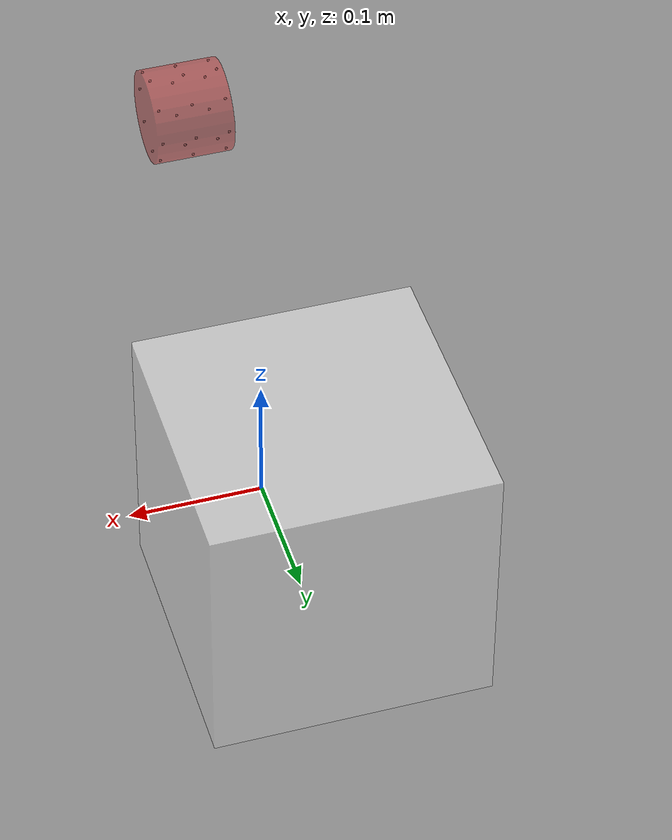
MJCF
<mujoco model="onshape">
    <compiler angle="radian"/>

    <option integrator="implicit" cone="elliptic" impratio="10" noslip_iterations="15"/>

    <default class="main">
        <geom condim="6"/>
    </default>

    <visual>
        <global offwidth="1920" offheight="1080"/>
    </visual>

    <worldbody>
        <!-- create a box geom-->
        <body name="box" pos="0 0.13 0.1">
            <geom name="metal_box" type="box" size="0.1 0.1 0.1"  rgba="1 1 1 0.5"/>
        </body>

        <body name="magnet_box" pos="0 -0.2 0.2" zaxis="1 0 0">
    <inertial mass="0.5" pos="0 0 0" diaginertia="0.000148 0.000148 0.000225"/>
    <freejoint/>
    <!-- Main magnet cylinder -->
    <geom name="mag_box" type="cylinder" size="0.035 0.029" rgba="0.8 0.2 0.2 0.5"/>

        <!-- === Magnetic contact points (2 mm inward offset) === -->
        <!-- radius = 0.033, z = +0.025, 0, -0.025 -->

        <!-- Top ring -->
        <geom name="mag_pt0"  type="sphere" size="0.001" pos="0.033 0 0.025"/>
        <geom name="mag_pt1"  type="sphere" size="0.001" pos="0.0233 0.0233 0.025"/>
        <geom name="mag_pt2"  type="sphere" size="0.001" pos="0 0.033 0.025"/>
        <geom name="mag_pt3"  type="sphere" size="0.001" pos="-0.0233 0.0233 0.025"/>
        <geom name="mag_pt4"  type="sphere" size="0.001" pos="-0.033 0 0.025"/>
        <geom name="mag_pt5"  type="sphere" size="0.001" pos="-0.0233 -0.0233 0.025"/>
        <geom name="mag_pt6"  type="sphere" size="0.001" pos="0 -0.033 0.025"/>
        <geom name="mag_pt7"  type="sphere" size="0.001" pos="0.0233 -0.0233 0.025"/>

        <!-- Middle ring -->
        <geom name="mag_pt8"  type="sphere" size="0.001" pos="0.033 0 0"/>
        <geom name="mag_pt9"  type="sphere" size="0.001" pos="0.0233 0.0233 0"/>
        <geom name="mag_pt10" type="sphere" size="0.001" pos="0 0.033 0"/>
        <geom name="mag_pt11" type="sphere" size="0.001" pos="-0.0233 0.0233 0"/>
        <geom name="mag_pt12" type="sphere" size="0.001" pos="-0.033 0 0"/>
        <geom name="mag_pt13" type="sphere" size="0.001" pos="-0.0233 -0.0233 0"/>
        <geom name="mag_pt14" type="sphere" size="0.001" pos="0 -0.033 0"/>
        <geom name="mag_pt15" type="sphere" size="0.001" pos="0.0233 -0.0233 0"/>

        <!-- Bottom ring -->
        <geom name="mag_pt16" type="sphere" size="0.001" pos="0.033 0 -0.025"/>
        <geom name="mag_pt17" type="sphere" size="0.001" pos="0.0233 0.0233 -0.025"/>
        <geom name="mag_pt18" type="sphere" size="0.001" pos="0 0.033 -0.025"/>
        <geom name="mag_pt19" type="sphere" size="0.001" pos="-0.0233 0.0233 -0.025"/>
        <geom name="mag_pt20" type="sphere" size="0.001" pos="-0.033 0 -0.025"/>
        <geom name="mag_pt21" type="sphere" size="0.001" pos="-0.0233 -0.0233 -0.025"/>
        <geom name="mag_pt22" type="sphere" size="0.001" pos="0 -0.033 -0.025"/>
        <geom name="mag_pt23" type="sphere" size="0.001" pos="0.0233 -0.0233 -0.025"/>
    </body>

    </worldbody>

</mujoco>
